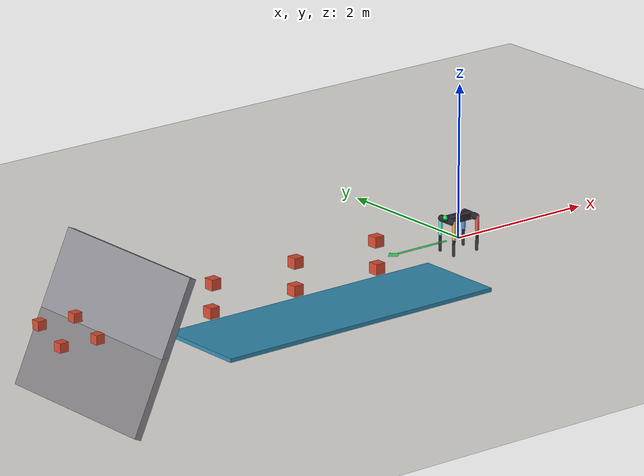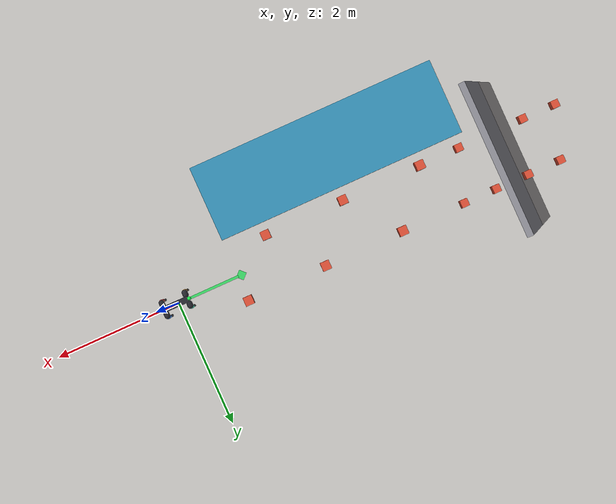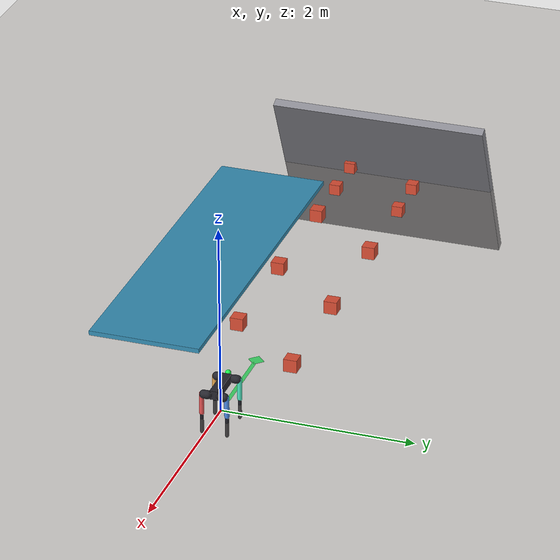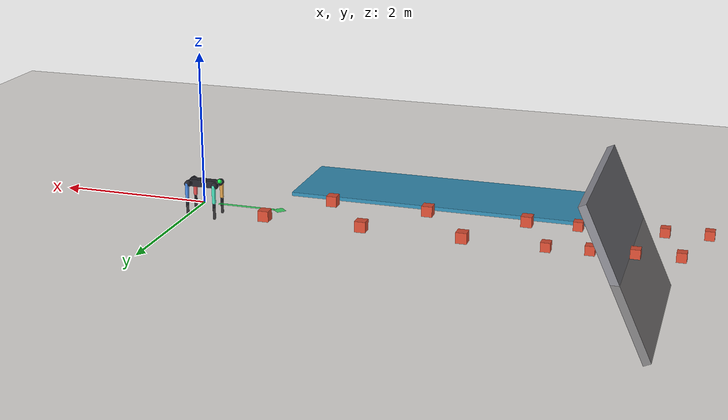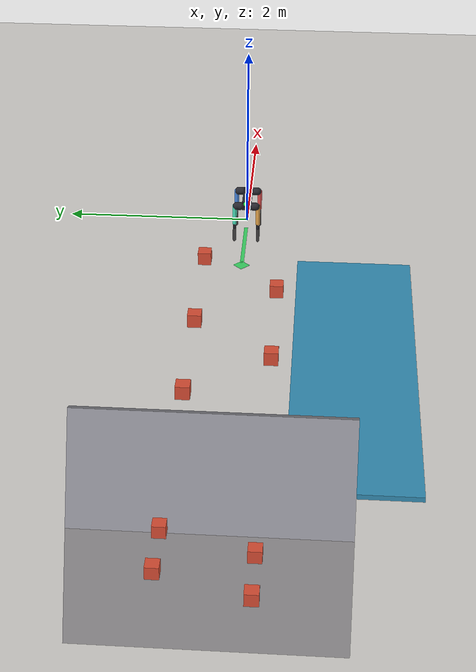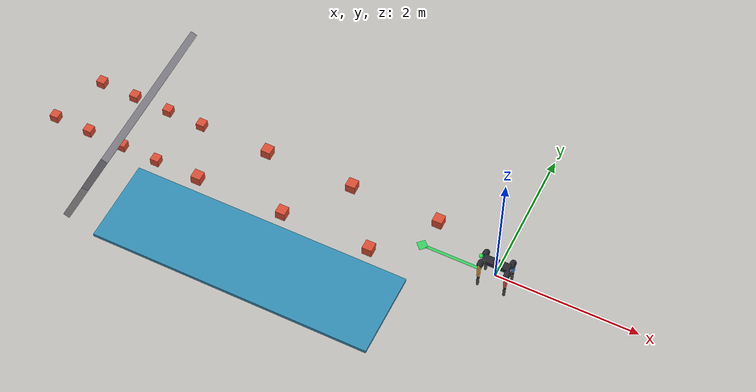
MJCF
<mujoco model="go1">

  <compiler angle="radian" autolimits="true" />
  <option gravity="0 0 -9.81" timestep="0.002" iterations="50" tolerance="1e-10" cone="elliptic" impratio="100" />

  <default>

    <joint damping="2.0" frictionloss="0.2" armature="0.01" />
    <geom contype="1" conaffinity="1" condim="3" friction="0.6 0.02 0.001" solref="0.005 1" solimp="0.98 0.99 0.001" />
    <position kp="300" ctrlrange="-3.14 3.14" forcelimited="true" forcerange="-33.5 33.5" />

    <default class="hip_joint">
      <joint damping="1.0" frictionloss="0.2" armature="0.01" />
    </default>

    <default class="foot">
      <geom condim="6" friction="0.8 0.02 0.01" solimp="0.015 1 0.023" solref="0.005 1" />
    </default>
  </default>

  <asset>

    <texture name="sky" type="skybox" builtin="gradient" rgb1="0.45 0.60 0.85" rgb2="0.75 0.85 0.95" width="512" height="512" mark="random" markrgb="1 1 1" random="0.01" />

    <texture name="ground_tex" type="2d" builtin="flat" rgb1="0.72 0.70 0.66" rgb2="0.68 0.66 0.62" width="512" height="512" mark="random" markrgb="0.65 0.63 0.60" random="0.05" />
    <material name="floor_mat" texture="ground_tex" texrepeat="12 12" texuniform="true" reflectance="0.02" rgba="0.75 0.73 0.70 1" />
    <material name="body_mat" rgba="0.15 0.15 0.18 1" reflectance="0.05" />
    <material name="leg_mat" rgba="0.12 0.12 0.15 1" reflectance="0.03" />
  </asset>

  <worldbody>
    <light name="sun" pos="5 3 12" dir="-0.3 -0.2 -1" diffuse="1.2 1.15 1.0" specular="0.5 0.5 0.4" castshadow="true" />
    <light name="ambient" pos="0 0 10" dir="0 0 -1" diffuse="0.35 0.38 0.45" specular="0 0 0" castshadow="false" />
    <light name="fill" pos="-5 -3 6" dir="0.3 0.2 -1" diffuse="0.25 0.25 0.30" castshadow="false" />

    <geom name="floor" type="plane" size="30 30 0.1" material="floor_mat" condim="6" friction="0.8 0.02 0.01" />

    <geom name="fwd_arrow_shaft" type="box" size="0.4 0.02 0.003" pos="-0.6 0 0.003" rgba="0.1 0.85 0.3 0.8" contype="0" conaffinity="0" />
    <geom name="fwd_arrow_head" type="box" size="0.06 0.06 0.003" pos="-1.05 0 0.003" euler="0 0 0.785" rgba="0.1 0.85 0.3 0.8" contype="0" conaffinity="0" />

    <body name="trunk" pos="0 0 0.27">
      <freejoint name="root" />
      <geom name="trunk" type="box" size="0.1881 0.0475 0.048" mass="9.041" material="body_mat" />
      <site name="imu" pos="0 0 0" size="0.005" />

      <geom name="head_marker" type="sphere" size="0.03" pos="-0.22 0 0.04" rgba="0.1 0.95 0.3 1" contype="0" conaffinity="0" mass="0.001" />

      <body name="FL_hip" pos="0.1881 0.0472 0">
        <joint name="FL_hip_joint" type="hinge" axis="1 0 0" range="-0.863 0.863" class="hip_joint" />
        <geom type="capsule" size="0.044 0.020" pos="0 0.040 0" euler="1.5708 0 0" mass="0.591" material="body_mat" />
        <body name="FL_thigh" pos="0 0.0838 0">
          <joint name="FL_thigh_joint" type="hinge" axis="0 -1 0" range="-0.686 4.501" />
          <geom type="capsule" size="0.025" fromto="0 0 0 0 0 -0.213" mass="0.921" material="leg_mat" rgba="0.30 0.55 0.90 1" />
          <body name="FL_calf" pos="0 0 -0.213">
            <joint name="FL_calf_joint" type="hinge" axis="0 -1 0" range="-2.818 -0.888" />
            <geom type="capsule" size="0.019" fromto="0 0 0 0 0 -0.213" mass="0.135" material="leg_mat" />
            <body name="FL_foot" pos="0 0 -0.213">
              <geom name="FL_foot_geom" type="sphere" size="0.0165" mass="0.06" rgba="0.30 0.55 0.90 1" class="foot" />
            </body>
          </body>
        </body>
      </body>

      <body name="FR_hip" pos="0.1881 -0.0472 0">
        <joint name="FR_hip_joint" type="hinge" axis="-1 0 0" range="-0.863 0.863" class="hip_joint" />
        <geom type="capsule" size="0.044 0.020" pos="0 -0.040 0" euler="1.5708 0 0" mass="0.591" material="body_mat" />
        <body name="FR_thigh" pos="0 -0.0838 0">
          <joint name="FR_thigh_joint" type="hinge" axis="0 -1 0" range="-0.686 4.501" />
          <geom type="capsule" size="0.025" fromto="0 0 0 0 0 -0.213" mass="0.921" material="leg_mat" rgba="0.90 0.33 0.33 1" />
          <body name="FR_calf" pos="0 0 -0.213">
            <joint name="FR_calf_joint" type="hinge" axis="0 -1 0" range="-2.818 -0.888" />
            <geom type="capsule" size="0.019" fromto="0 0 0 0 0 -0.213" mass="0.135" material="leg_mat" />
            <body name="FR_foot" pos="0 0 -0.213">
              <geom name="FR_foot_geom" type="sphere" size="0.0165" mass="0.06" rgba="0.90 0.33 0.33 1" class="foot" />
            </body>
          </body>
        </body>
      </body>

      <body name="RL_hip" pos="-0.1881 0.0472 0">
        <joint name="RL_hip_joint" type="hinge" axis="1 0 0" range="-0.863 0.863" class="hip_joint" />
        <geom type="capsule" size="0.044 0.020" pos="0 0.040 0" euler="1.5708 0 0" mass="0.591" material="body_mat" />
        <body name="RL_thigh" pos="0 0.0838 0">
          <joint name="RL_thigh_joint" type="hinge" axis="0 -1 0" range="-0.686 4.501" />
          <geom type="capsule" size="0.025" fromto="0 0 0 0 0 -0.213" mass="0.921" material="leg_mat" rgba="0.30 0.90 0.75 1" />
          <body name="RL_calf" pos="0 0 -0.213">
            <joint name="RL_calf_joint" type="hinge" axis="0 -1 0" range="-2.818 -0.888" />
            <geom type="capsule" size="0.019" fromto="0 0 0 0 0 -0.213" mass="0.135" material="leg_mat" />
            <body name="RL_foot" pos="0 0 -0.213">
              <geom name="RL_foot_geom" type="sphere" size="0.0165" mass="0.06" rgba="0.30 0.90 0.75 1" class="foot" />
            </body>
          </body>
        </body>
      </body>

      <body name="RR_hip" pos="-0.1881 -0.0472 0">
        <joint name="RR_hip_joint" type="hinge" axis="-1 0 0" range="-0.863 0.863" class="hip_joint" />
        <geom type="capsule" size="0.044 0.020" pos="0 -0.040 0" euler="1.5708 0 0" mass="0.591" material="body_mat" />
        <body name="RR_thigh" pos="0 -0.0838 0">
          <joint name="RR_thigh_joint" type="hinge" axis="0 -1 0" range="-0.686 4.501" />
          <geom type="capsule" size="0.025" fromto="0 0 0 0 0 -0.213" mass="0.921" material="leg_mat" rgba="0.90 0.65 0.30 1" />
          <body name="RR_calf" pos="0 0 -0.213">
            <joint name="RR_calf_joint" type="hinge" axis="0 -1 0" range="-2.818 -0.888" />
            <geom type="capsule" size="0.019" fromto="0 0 0 0 0 -0.213" mass="0.135" material="leg_mat" />
            <body name="RR_foot" pos="0 0 -0.213">
              <geom name="RR_foot_geom" type="sphere" size="0.0165" mass="0.06" rgba="0.90 0.65 0.30 1" class="foot" />
            </body>
          </body>
        </body>
      </body>

    </body>
  <geom name="cadenza_obs_0" type="box" size="1 1.2 0.05" rgba="0.55 0.55 0.58 1" pos="-5.50114 0 -0.01507" axisangle="0 1 0 2" /><geom name="cadenza_obs_1" type="box" size="2 0.6 0.025" rgba="0.2 0.55 0.7 1" pos="-3 -1.2 0.025" /><geom name="cadenza_obs_2" type="box" size="0.07 0.07 0.07" rgba="0.85 0.3 0.2 1" pos="-1 0.4 0.07" /><geom name="cadenza_obs_3" type="box" size="0.07 0.07 0.07" rgba="0.85 0.3 0.2 1" pos="-1.64 -0.4 0.07" /><geom name="cadenza_obs_4" type="box" size="0.07 0.07 0.07" rgba="0.85 0.3 0.2 1" pos="-2.28 0.4 0.07" /><geom name="cadenza_obs_5" type="box" size="0.07 0.07 0.07" rgba="0.85 0.3 0.2 1" pos="-2.92 -0.4 0.07" /><geom name="cadenza_obs_6" type="box" size="0.07 0.07 0.07" rgba="0.85 0.3 0.2 1" pos="-3.56 0.4 0.07" /><geom name="cadenza_obs_7" type="box" size="0.07 0.07 0.07" rgba="0.85 0.3 0.2 1" pos="-4.2 -0.4 0.07" /><geom name="cadenza_obs_8" type="box" size="0.06 0.06 0.06" rgba="0.85 0.3 0.2 1" pos="-4.57995 0.4 0.0678285" /><geom name="cadenza_obs_9" type="box" size="0.06 0.06 0.06" rgba="0.85 0.3 0.2 1" pos="-4.84265 -0.4 0.0770021" /><geom name="cadenza_obs_10" type="box" size="0.06 0.06 0.06" rgba="0.85 0.3 0.2 1" pos="-5.10535 0.4 0.0861757" /><geom name="cadenza_obs_11" type="box" size="0.06 0.06 0.06" rgba="0.85 0.3 0.2 1" pos="-5.36804 -0.4 0.0953493" /><geom name="cadenza_obs_12" type="box" size="0.06 0.06 0.06" rgba="0.85 0.3 0.2 1" pos="-5.63074 0.4 0.104523" /><geom name="cadenza_obs_13" type="box" size="0.06 0.06 0.06" rgba="0.85 0.3 0.2 1" pos="-5.89344 -0.4 0.113696" /><geom name="cadenza_obs_14" type="box" size="0.06 0.06 0.06" rgba="0.85 0.3 0.2 1" pos="-6.15613 0.4 0.12287" /><geom name="cadenza_obs_15" type="box" size="0.06 0.06 0.06" rgba="0.85 0.3 0.2 1" pos="-6.41883 -0.4 0.132044" /></worldbody>

  <actuator>

    <position name="FL_hip" joint="FL_hip_joint" ctrlrange="-0.80 0.80" forcelimited="true" forcerange="-23.7 23.7" />
    <position name="FL_thigh" joint="FL_thigh_joint" ctrlrange="-0.50 2.50" forcelimited="true" forcerange="-23.7 23.7" />
    <position name="FL_calf" joint="FL_calf_joint" ctrlrange="-2.75 -0.60" forcelimited="true" forcerange="-35.55 35.55" />
    <position name="FR_hip" joint="FR_hip_joint" ctrlrange="-0.80 0.80" forcelimited="true" forcerange="-23.7 23.7" />
    <position name="FR_thigh" joint="FR_thigh_joint" ctrlrange="-0.50 2.50" forcelimited="true" forcerange="-23.7 23.7" />
    <position name="FR_calf" joint="FR_calf_joint" ctrlrange="-2.75 -0.60" forcelimited="true" forcerange="-35.55 35.55" />
    <position name="RL_hip" joint="RL_hip_joint" ctrlrange="-0.80 0.80" forcelimited="true" forcerange="-23.7 23.7" />
    <position name="RL_thigh" joint="RL_thigh_joint" ctrlrange="-0.50 2.50" forcelimited="true" forcerange="-23.7 23.7" />
    <position name="RL_calf" joint="RL_calf_joint" ctrlrange="-2.75 -0.60" forcelimited="true" forcerange="-35.55 35.55" />
    <position name="RR_hip" joint="RR_hip_joint" ctrlrange="-0.80 0.80" forcelimited="true" forcerange="-23.7 23.7" />
    <position name="RR_thigh" joint="RR_thigh_joint" ctrlrange="-0.50 2.50" forcelimited="true" forcerange="-23.7 23.7" />
    <position name="RR_calf" joint="RR_calf_joint" ctrlrange="-2.75 -0.60" forcelimited="true" forcerange="-35.55 35.55" />
  </actuator>

  <keyframe>
    <key name="home" qpos="0 0 0.27 1 0 0 0                            0 0.9 -1.8  0 0.9 -1.8                            0 0.9 -1.8  0 0.9 -1.8" />
  </keyframe>

</mujoco>
